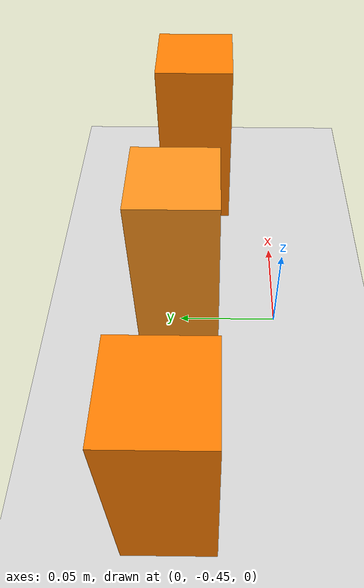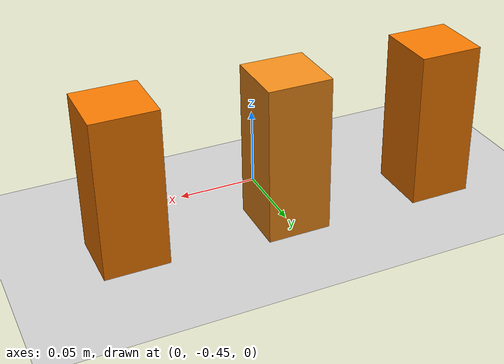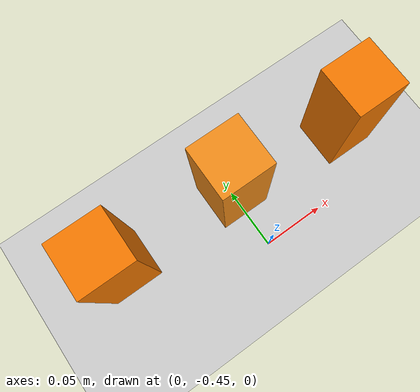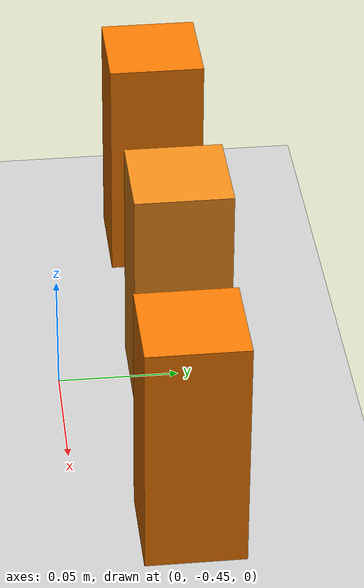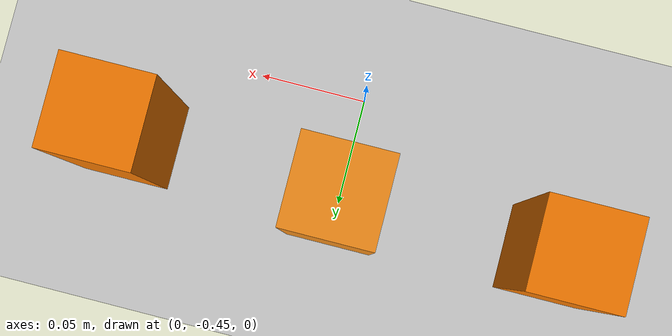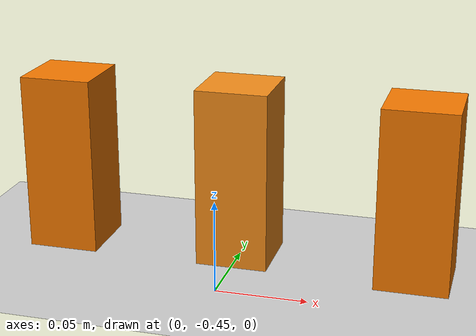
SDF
<sdf version="1.6">
 <world name="default">
  <light name="sun" type="directional">
   <pose>0 0 10 0 -0 0</pose>
   <diffuse>0.8 0.8 0.8 1</diffuse>
   <specular>0.2 0.2 0.2 1</specular>
   <attenuation>
    <range>1000</range>
    <constant>0.9</constant>
    <linear>0.01</linear>
    <quadratic>0.001</quadratic>
   </attenuation>
   <direction>-0.5 0.1 -0.9</direction>
  </light>
  <model name="ground_plane">
   <static>1</static>
   <link name="link">
    <collision name="collision">
     <geometry><plane><normal>0 0 1</normal><size>400 400</size></plane></geometry>
     <surface>
      <contact><collide_bitmask>65535</collide_bitmask></contact>
      <friction><ode><mu>100</mu><mu2>50</mu2></ode></friction>
     </surface>
    </collision>
    <visual name="visual">
     <cast_shadows>0</cast_shadows>
     <geometry><plane><normal>0 0 1</normal><size>100 100</size></plane></geometry>
     <material>
      <script><uri>file://media/materials/scripts/gazebo.material</uri><name>Gazebo/Grey</name></script>
     </material>
    </visual>
   </link>
  </model>
  <gravity>0 0 -9.8</gravity>
  <magnetic_field>6e-06 2.3e-05 -4.2e-05</magnetic_field>
  <atmosphere type="adiabatic"/>
  <physics name="default_physics" default="0" type="ode">
   <max_step_size>0.001</max_step_size>
   <real_time_factor>1</real_time_factor>
   <real_time_update_rate>1000</real_time_update_rate>
  </physics>
  <scene><ambient>0.4 0.4 0.4 1</ambient><background>0.7 0.7 0.7 1</background><shadows>1</shadows></scene>
  <spherical_coordinates>
   <surface_model>EARTH_WGS84</surface_model>
   <latitude_deg>0</latitude_deg>
   <longitude_deg>0</longitude_deg>
   <elevation>0</elevation>
   <heading_deg>0</heading_deg>
  </spherical_coordinates>
  <model name="unit_box_clone">
   <link name="link">
    <inertial>
     <mass>0.187942</mass>
     <inertia>
      <ixx>0.00018166</ixx>
      <ixy>0</ixy>
      <ixz>0</ixz>
      <iyy>0.00018167</iyy>
      <iyz>0</iyz>
      <izz>5.01e-05</izz>
     </inertia>
     <pose>0 0 -0.05 0 -0 0</pose>
    </inertial>
    <visual name="visual">
     <geometry><box><size>0.039996 0.039992 0.099999</size></box></geometry>
     <material>
      <script><name>Gazebo/Grey</name><uri>file://media/materials/scripts/gazebo.material</uri></script>
      <shader type="pixel"><normal_map>__default__</normal_map></shader>
      <ambient>0.961 0.475 0 1</ambient>
      <diffuse>0.961 0.475 0 1</diffuse>
      <specular>0.961 0.475 0 1</specular>
      <emissive>0.961 0.475 0 1</emissive>
     </material>
     <pose>0 0 -0.05 0 -0 0</pose>
    </visual>
    <collision name="collision">
     <pose>0 0 -0.05 0 -0 0</pose>
     <geometry><box><size>0.039996 0.039992 0.099999</size></box></geometry>
     <surface>
      <friction>
       <ode><mu>1</mu><mu2>1</mu2><fdir1>0 0 0</fdir1><slip1>0</slip1><slip2>0</slip2></ode>
       <torsional>
        <coefficient>1</coefficient>
        <patch_radius>0</patch_radius>
        <surface_radius>0</surface_radius>
        <use_patch_radius>1</use_patch_radius>
        <ode><slip>0</slip></ode>
       </torsional>
      </friction>
      <bounce><restitution_coefficient>0</restitution_coefficient><threshold>1e+06</threshold></bounce>
      <contact>
       <collide_without_contact>0</collide_without_contact>
       <collide_without_contact_bitmask>1</collide_without_contact_bitmask>
       <collide_bitmask>1</collide_bitmask>
       <ode>
        <soft_cfm>0</soft_cfm>
        <soft_erp>0.2</soft_erp>
        <kp>1e+13</kp>
        <kd>1</kd>
        <max_vel>0.01</max_vel>
        <min_depth>0</min_depth>
       </ode>
       <bullet>
        <split_impulse>1</split_impulse>
        <split_impulse_penetration_threshold>-0.01</split_impulse_penetration_threshold>
        <soft_cfm>0</soft_cfm>
        <soft_erp>0.2</soft_erp>
        <kp>1e+13</kp>
        <kd>1</kd>
       </bullet>
      </contact>
     </surface>
    </collision>
   </link>
   <static>0</static>
   <pose>0.100003 -0.406479 0.099999 -1e-06 2.8e-05 8e-05</pose>
  </model>
  <model name="unit_box_clone_0">
   <link name="link">
    <inertial>
     <mass>0.187942</mass>
     <inertia>
      <ixx>0.00018166</ixx>
      <ixy>0</ixy>
      <ixz>0</ixz>
      <iyy>0.00018167</iyy>
      <iyz>0</iyz>
      <izz>5.01e-05</izz>
     </inertia>
     <pose>0 0 -0.05 0 -0 0</pose>
    </inertial>
    <visual name="visual">
     <geometry><box><size>0.039996 0.039992 0.099999</size></box></geometry>
     <material>
      <script><name>Gazebo/Orange</name><uri>file://media/materials/scripts/gazebo.material</uri></script>
      <shader type="pixel"><normal_map>__default__</normal_map></shader>
      <ambient>0.961 0.475 0 1</ambient>
      <diffuse>0.961 0.475 0 1</diffuse>
      <specular>0.961 0.475 0 1</specular>
      <emissive>0.961 0.475 0 1</emissive>
     </material>
     <pose>0 0 -0.05 0 -0 0</pose>
    </visual>
    <collision name="collision">
     <pose>0 0 -0.05 0 -0 0</pose>
     <geometry><box><size>0.039996 0.039992 0.099999</size></box></geometry>
     <surface>
      <friction>
       <ode><mu>1</mu><mu2>1</mu2><fdir1>0 0 0</fdir1><slip1>0</slip1><slip2>0</slip2></ode>
       <torsional>
        <coefficient>1</coefficient>
        <patch_radius>0</patch_radius>
        <surface_radius>0</surface_radius>
        <use_patch_radius>1</use_patch_radius>
        <ode><slip>0</slip></ode>
       </torsional>
      </friction>
      <bounce><restitution_coefficient>0</restitution_coefficient><threshold>1e+06</threshold></bounce>
      <contact>
       <collide_without_contact>0</collide_without_contact>
       <collide_without_contact_bitmask>1</collide_without_contact_bitmask>
       <collide_bitmask>1</collide_bitmask>
       <ode>
        <soft_cfm>0</soft_cfm>
        <soft_erp>0.2</soft_erp>
        <kp>1e+13</kp>
        <kd>1</kd>
        <max_vel>0.01</max_vel>
        <min_depth>0</min_depth>
       </ode>
       <bullet>
        <split_impulse>1</split_impulse>
        <split_impulse_penetration_threshold>-0.01</split_impulse_penetration_threshold>
        <soft_cfm>0</soft_cfm>
        <soft_erp>0.2</soft_erp>
        <kp>1e+13</kp>
        <kd>1</kd>
       </bullet>
      </contact>
     </surface>
    </collision>
   </link>
   <static>0</static>
   <pose>-4e-06 -0.399997 0.099998 -4.9e-05 -3.3e-05 0.000131</pose>
  </model>
  <model name="unit_box">
   <link name="link">
    <inertial>
     <mass>0.187998</mass>
     <inertia>
      <ixx>0.00018173</ixx>
      <ixy>0</ixy>
      <ixz>0</ixz>
      <iyy>0.00018173</iyy>
      <iyz>0</iyz>
      <izz>5.013e-05</izz>
     </inertia>
     <pose>0 0 -0.05 0 -0 0</pose>
    </inertial>
    <visual name="visual">
     <geometry><box><size>0.04 0.04 0.099999</size></box></geometry>
     <material>
      <script><name>Gazebo/Grey</name><uri>file://media/materials/scripts/gazebo.material</uri></script>
      <shader type="pixel"><normal_map>__default__</normal_map></shader>
      <ambient>0.961 0.475 0 1</ambient>
      <diffuse>0.961 0.475 0 1</diffuse>
      <specular>0.961 0.475 0 1</specular>
      <emissive>0.961 0.475 0 1</emissive>
     </material>
     <pose>0 0 -0.05 0 -0 0</pose>
    </visual>
    <collision name="collision">
     <pose>0 0 -0.05 0 -0 0</pose>
     <geometry><box><size>0.04 0.04 0.099999</size></box></geometry>
     <surface>
      <friction>
       <ode><mu>200</mu><mu2>200</mu2><fdir1>0 0 0</fdir1><slip1>0</slip1><slip2>0</slip2></ode>
       <torsional>
        <coefficient>1</coefficient>
        <patch_radius>0</patch_radius>
        <surface_radius>0</surface_radius>
        <use_patch_radius>1</use_patch_radius>
        <ode><slip>0</slip></ode>
       </torsional>
      </friction>
      <bounce><restitution_coefficient>0</restitution_coefficient><threshold>1e+06</threshold></bounce>
      <contact>
       <collide_without_contact>0</collide_without_contact>
       <collide_without_contact_bitmask>1</collide_without_contact_bitmask>
       <collide_bitmask>1</collide_bitmask>
       <ode>
        <soft_cfm>0</soft_cfm>
        <soft_erp>0.2</soft_erp>
        <kp>1e+13</kp>
        <kd>1</kd>
        <max_vel>0.01</max_vel>
        <min_depth>0</min_depth>
       </ode>
       <bullet>
        <split_impulse>1</split_impulse>
        <split_impulse_penetration_threshold>-0.01</split_impulse_penetration_threshold>
        <soft_cfm>0</soft_cfm>
        <soft_erp>0.2</soft_erp>
        <kp>1e+13</kp>
        <kd>1</kd>
       </bullet>
      </contact>
     </surface>
    </collision>
   </link>
   <static>0</static>
   <pose>-0.100003 -0.4 0.1 8e-06 -2.2e-05 -2.9e-05</pose>
  </model>
 </world>
</sdf>
